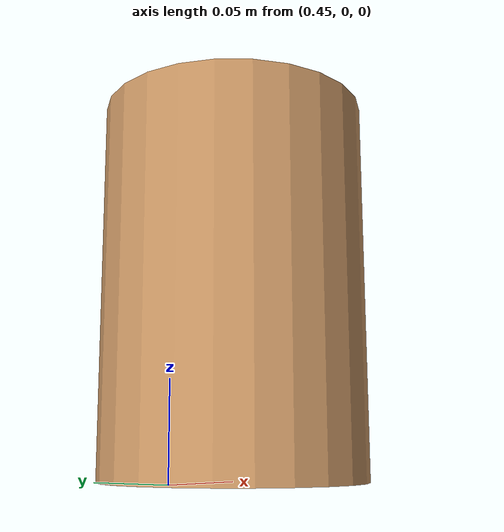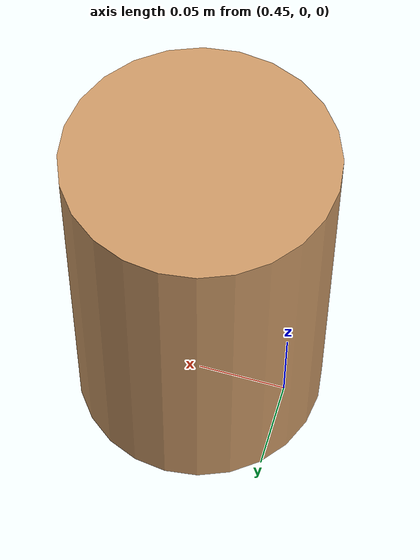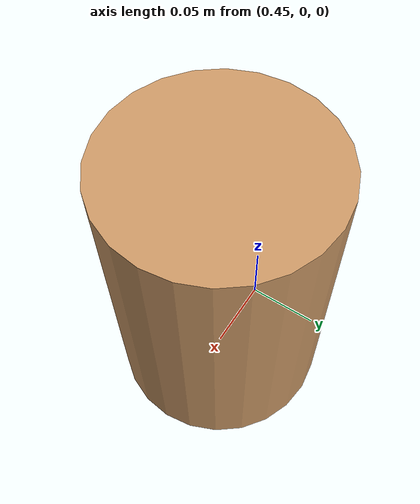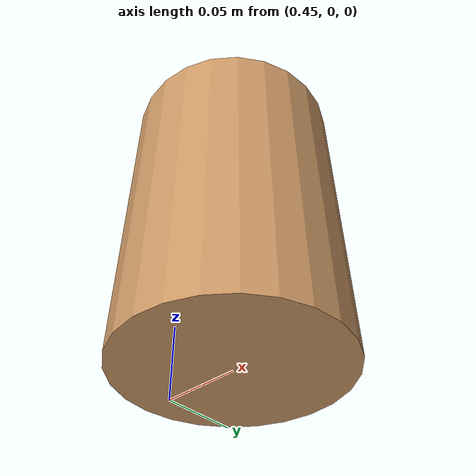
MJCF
<mujoco model="example">
    <compiler coordinate="global"/>
    <default>
        <geom rgba=".8 .6 .4 1"/>
    </default>
    <asset>
        <texture type="skybox" builtin="gradient" rgb1="1 1 1" rgb2=".6 .8 1"
                 width="256" height="256"/>
    </asset>
    <worldbody>
        <light pos="0 1 1" dir="0 -1 -1" diffuse="1 1 1"/>
        <body>
            <geom type="cylinder" fromto="0.5 0 0.2  0.5 0 0" size="0.07"/>
            <joint type="free"/>
        </body>
    </worldbody>
</mujoco>
